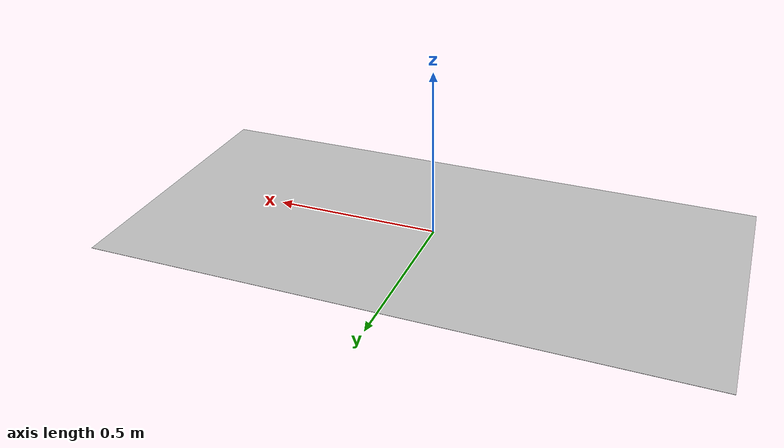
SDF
<?xml version="1.0"?>
<sdf version="1.4">
  <model name="cali_mat">
    <static>true</static>
    <link name="track">
      <collision name="collision">
        <geometry>
          <plane>
            <normal> 0 0 1</normal>
            <size>1.77581 0.841</size>
          </plane>
        </geometry>
        <surface>
          <friction>
            <ode>
              <mu>100</mu>
              <mu2>50</mu2>
            </ode>
          </friction>
         </surface>
      </collision>
      <visual name="visual">
        <cast_shadows>false</cast_shadows>
        <geometry>
          <plane>
            <normal>0 0 1</normal>
            <size>1.77581 0.841</size>
          </plane>
        </geometry>
        <material>
          <script>
            <uri>model://selfie_description/models/cali_mat/materials/scripts</uri>
            <uri>model://selfie_description/models/cali_mat/materials/textures</uri>
            <name>cali_mat/Image</name>
          </script>
        </material>
      </visual>
    </link>
  </model>
</sdf>
